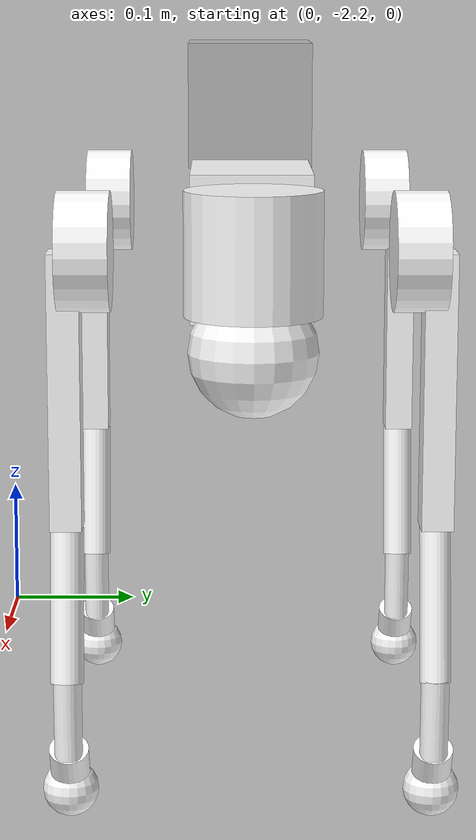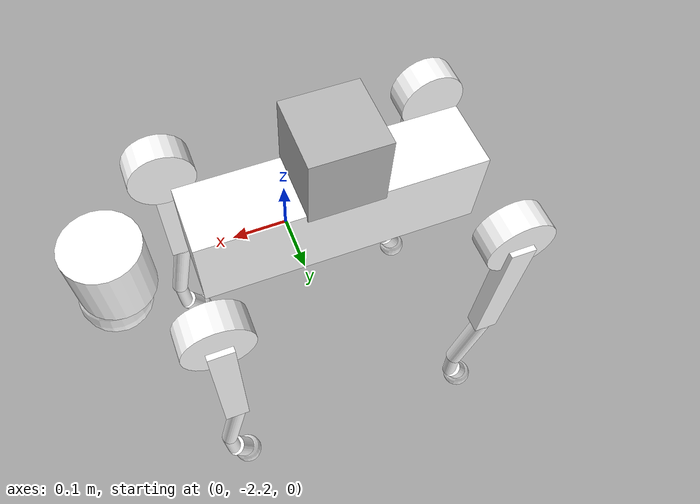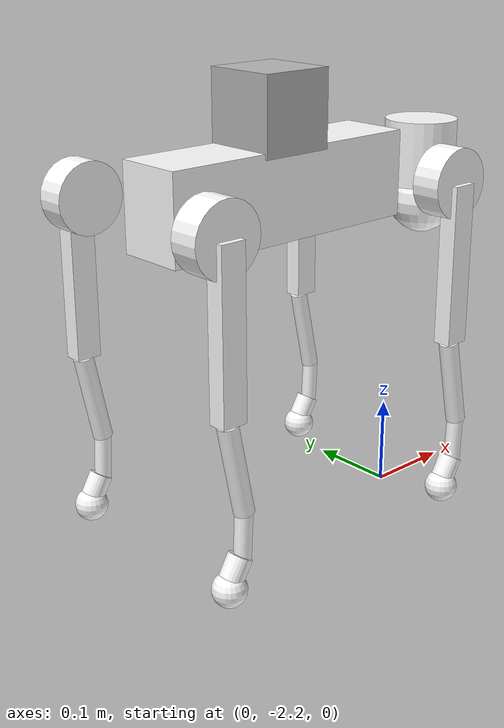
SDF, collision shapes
<?xml version="1.0" ?>
<sdf version="1.10">
  <model name='go2'>
    <plugin
      filename="gz-sim-velocity-control-system"
      name="gz::sim::systems::VelocityControl">
      <initial_linear>0 0 0</initial_linear>
      <initial_angular>0 0 0</initial_angular>
    </plugin>
    <pose>0 -2 0.325 0 -0 0</pose>
      <link name='base'>
        <inertial>
          <pose>0.02015306388240143 -1.613934527087907e-20 -0.005108955351009753 0 0 0</pose>
          <mass>7.2790000000000017</mass>
          <inertia>
            <ixx>0.025737618948512481</ixx>
            <ixy>0.00012166</ixy>
            <ixz>0.001534235398809762</ixz>
            <iyy>0.1031209538931058</iyy>
            <iyz>-3.1199999999999999e-05</iyz>
            <izz>0.1128090234445933</izz>
          </inertia>
        </inertial>
        <collision name='base_collision'>
          <pose>0 0 0 0 0 0</pose>
          <geometry>
            <box>
              <size>0.3762 0.0935 0.114</size>
            </box>
          </geometry>
        </collision>
        <collision name='base_fixed_joint_lump__Head_upper_collision_1'>
          <pose>0.285 0 0.01 0 0 0</pose>
          <geometry>
            <cylinder>
              <length>0.089999999999999997</length>
              <radius>0.050000000000000003</radius>
            </cylinder>
          </geometry>
        </collision>
        <collision name='base_fixed_joint_lump__Head_lower_collision_2'>
          <pose>0.293 0 -0.06 0 0 0</pose>
          <geometry>
            <sphere>
              <radius>0.047</radius>
            </sphere>
          </geometry>
        </collision>
        <visual name='base_visual'>
          <pose>0 0 0 0 0 0</pose>
          <geometry>
            <mesh>
              <scale>1 1 1</scale>
              <uri>../dae/base.dae</uri>
            </mesh>
          </geometry>
          <material>
            <diffuse>1 1 1 1</diffuse>
            <ambient>1 1 1 1</ambient>
          </material>
        </visual>
      </link>
      <joint name='FL_hip_joint' type='fixed'>
        <pose relative_to='base'>0.1934 0.0465 0 0 0 0</pose>
        <parent>base</parent>
        <child>FL_hip</child>
        <axis>
          <xyz>1 0 0</xyz>
          <limit>
            <lower>-1.0471999999999999</lower>
            <upper>1.0471999999999999</upper>
            <effort>23.699999999999999</effort>
            <velocity>30.100000000000001</velocity>
          </limit>
          <dynamics>
            <spring_reference>0</spring_reference>
            <spring_stiffness>0</spring_stiffness>
          </dynamics>
        </axis>
      </joint>
      <link name='FL_hip'>
        <pose relative_to='FL_hip_joint'>0 0 0 0 0 0</pose>
        <inertial>
          <pose>-0.004773402868318123 0.00169748370273794 -9.281616688396352e-05 0 0 0</pose>
          <mass>0.76700000000000002</mass>
          <inertia>
            <ixx>0.00053999151781062584</ixx>
            <ixy>-2.1220993324641449e-06</ixy>
            <ixz>1.0653925501955671e-06</ixz>
            <iyy>0.00099813696478559337</iyy>
            <iyz>-1.4027352647979141e-06</iyz>
            <izz>0.00065828474786205991</izz>
          </inertia>
        </inertial>
        <collision name='FL_hip_collision'>
          <pose>0 0.08 0 1.570796326794896 0 0</pose>
          <geometry>
            <cylinder>
              <length>0.040000000000000001</length>
              <radius>0.045999999999999999</radius>
            </cylinder>
          </geometry>
        </collision>
        <visual name='FL_hip_visual'>
          <pose>0 0 0 0 0 0</pose>
          <geometry>
            <mesh>
              <scale>1 1 1</scale>
              <uri>../dae/hip.dae</uri>
            </mesh>
          </geometry>
          <material>
            <diffuse>1 1 1 1</diffuse>
            <ambient>1 1 1 1</ambient>
          </material>
        </visual>
      </link>
      <joint name='FL_thigh_joint' type='fixed'>
        <pose relative_to='FL_hip'>0 0.0955 0 0 0 0</pose>
        <parent>FL_hip</parent>
        <child>FL_thigh</child>
        <axis>
          <xyz>0 1 0</xyz>
          <limit>
            <lower>-1.5708</lower>
            <upper>3.4906999999999999</upper>
            <effort>23.699999999999999</effort>
            <velocity>30.100000000000001</velocity>
          </limit>
          <dynamics>
            <spring_reference>0</spring_reference>
            <spring_stiffness>0</spring_stiffness>
          </dynamics>
        </axis>
      </joint>
      <link name='FL_thigh'>
        <pose relative_to='FL_thigh_joint'>0 0 0 0 0 0</pose>
        <inertial>
          <pose>-0.003471780821917808 -0.02302074939564867 -0.03035487510072523 0 0 0</pose>
          <mass>1.2410000000000001</mass>
          <inertia>
            <ixx>0.0059963333412087023</ixx>
            <ixy>9.0305334356164388e-05</ixy>
            <ixz>-0.00029910392372602742</ixz>
            <iyy>0.0060013394099700237</iyy>
            <iyz>0.00083515091803384371</iyz>
            <izz>0.001099147165167445</izz>
          </inertia>
        </inertial>
        <collision name='FL_thigh_collision'>
          <pose>0 0 -0.1065 0 1.570796326794897 0</pose>
          <geometry>
            <box>
              <size>0.213 0.0245 0.034</size>
            </box>
          </geometry>
        </collision>
        <visual name='FL_thigh_visual'>
          <pose>0 0 0 0 0 0</pose>
          <geometry>
            <mesh>
              <scale>1 1 1</scale>
              <uri>../dae/thigh.dae</uri>
            </mesh>
          </geometry>
          <material>
            <diffuse>1 1 1 1</diffuse>
            <ambient>1 1 1 1</ambient>
          </material>
        </visual>
      </link>
      <joint name='FL_calf_joint' type='fixed'>
        <pose relative_to='FL_thigh'>0 0 -0.213 0 0 0</pose>
        <parent>FL_thigh</parent>
        <child>FL_calf</child>
        <axis>
          <xyz>0 1 0</xyz>
          <limit>
            <lower>-2.7227000000000001</lower>
            <upper>-0.83775999999999995</upper>
            <effort>45.43</effort>
            <velocity>15.699999999999999</velocity>
          </limit>
          <dynamics>
            <spring_reference>0</spring_reference>
            <spring_stiffness>0</spring_stiffness>
          </dynamics>
        </axis>
      </joint>
      <link name='FL_calf'>
        <pose relative_to='FL_calf_joint'>0 0 0 0 0 0</pose>
        <inertial>
          <pose>0.004350103092783504 -0.0007739690721649483 -0.1352061855670103 0 0 0</pose>
          <mass>0.19400000000000001</mass>
          <inertia>
            <ixx>0.001394581937371134</ixx>
            <ixy>5.0965402061855686e-07</ixy>
            <ixz>1.475958762886847e-07</ixz>
            <iyy>0.001415505295175258</iyy>
            <iyz>1.1313958762886591e-05</iyz>
            <izz>4.3483727391752568e-05</izz>
          </inertia>
        </inertial>
        <collision name='FL_calf_collision'>
          <pose>0.008 0 -0.06 0 -0.21 0</pose>
          <geometry>
            <cylinder>
              <length>0.12</length>
              <radius>0.012</radius>
            </cylinder>
          </geometry>
        </collision>
        <collision name='FL_calflower_collision_1'>
          <pose>0.02 0 -0.148 0 0.05 0</pose>
          <geometry>
            <cylinder>
              <length>0.065000000000000002</length>
              <radius>0.010999999999999999</radius>
            </cylinder>
          </geometry>
        </collision>
        <collision name='FL_calflower1_collision_2'>
          <pose>0.008013330625223204 0 -0.1874502187230919 0 0.53 0</pose>
          <geometry>
            <cylinder>
              <length>0.029999999999999999</length>
              <radius>0.0155</radius>
            </cylinder>
          </geometry>
        </collision>
        <collision name='FL_calf_fixed_joint_lump__FL_foot_collision_3'>
          <pose>-0.002 0 -0.213 0 0 0</pose>
          <geometry>
            <sphere>
              <radius>0.021999999999999999</radius>
            </sphere>
          </geometry>
        </collision>
        <visual name='FL_calf_visual'>
          <pose>0 0 0 0 0 0</pose>
          <geometry>
            <mesh>
              <scale>1 1 1</scale>
              <uri>../dae/calf.dae</uri>
            </mesh>
          </geometry>
          <material>
            <diffuse>1 1 1 1</diffuse>
            <ambient>1 1 1 1</ambient>
          </material>
        </visual>
        <visual name='FL_calf_fixed_joint_lump__FL_foot_visual_1'>
          <pose>0 0 -0.213 0 0 0</pose>
          <geometry>
            <mesh>
              <scale>1 1 1</scale>
              <uri>../dae/foot.dae</uri>
            </mesh>
          </geometry>
          <material>
            <diffuse>1 1 1 1</diffuse>
            <ambient>1 1 1 1</ambient>
          </material>
        </visual>
      </link>
      <joint name='FR_hip_joint' type='fixed'>
        <pose relative_to='base'>0.1934 -0.0465 0 0 0 0</pose>
        <parent>base</parent>
        <child>FR_hip</child>
        <axis>
          <xyz>1 0 0</xyz>
          <limit>
            <lower>-1.0471999999999999</lower>
            <upper>1.0471999999999999</upper>
            <effort>23.699999999999999</effort>
            <velocity>30.100000000000001</velocity>
          </limit>
          <dynamics>
            <spring_reference>0</spring_reference>
            <spring_stiffness>0</spring_stiffness>
          </dynamics>
        </axis>
      </joint>
      <link name='FR_hip'>
        <pose relative_to='FR_hip_joint'>0 0 0 0 0 0</pose>
        <inertial>
          <pose>-0.004773402868318123 -0.00169748370273794 -9.281616688396352e-05 0 0 0</pose>
          <mass>0.76700000000000002</mass>
          <inertia>
            <ixx>0.00053999151781062584</ixx>
            <ixy>2.1220993324641449e-06</ixy>
            <ixz>1.0653925501955671e-06</ixz>
            <iyy>0.00099813696478559337</iyy>
            <iyz>1.4027352647979141e-06</iyz>
            <izz>0.00065828474786205991</izz>
          </inertia>
        </inertial>
        <collision name='FR_hip_collision'>
          <pose>0 -0.08 0 1.570796326794896 0 0</pose>
          <geometry>
            <cylinder>
              <length>0.040000000000000001</length>
              <radius>0.045999999999999999</radius>
            </cylinder>
          </geometry>
        </collision>
        <visual name='FR_hip_visual'>
          <pose>0 0 0 3.1415 0 0</pose>
          <geometry>
            <mesh>
              <scale>1 1 1</scale>
              <uri>../dae/hip.dae</uri>
            </mesh>
          </geometry>
          <material>
            <diffuse>1 1 1 1</diffuse>
            <ambient>1 1 1 1</ambient>
          </material>
        </visual>
      </link>
      <joint name='FR_thigh_joint' type='fixed'>
        <pose relative_to='FR_hip'>0 -0.0955 0 0 0 0</pose>
        <parent>FR_hip</parent>
        <child>FR_thigh</child>
        <axis>
          <xyz>0 1 0</xyz>
          <limit>
            <lower>-1.5708</lower>
            <upper>3.4906999999999999</upper>
            <effort>23.699999999999999</effort>
            <velocity>30.100000000000001</velocity>
          </limit>
          <dynamics>
            <spring_reference>0</spring_reference>
            <spring_stiffness>0</spring_stiffness>
          </dynamics>
        </axis>
      </joint>
      <link name='FR_thigh'>
        <pose relative_to='FR_thigh_joint'>0 0 0 0 0 0</pose>
        <inertial>
          <pose>-0.003471780821917808 0.02302074939564867 -0.03035487510072523 0 0 0</pose>
          <mass>1.2410000000000001</mass>
          <inertia>
            <ixx>0.0059963333412087023</ixx>
            <ixy>-9.0305334356164388e-05</ixy>
            <ixz>-0.00029910392372602742</ixz>
            <iyy>0.0060013394099700237</iyy>
            <iyz>-0.00083515091803384371</iyz>
            <izz>0.001099147165167445</izz>
          </inertia>
        </inertial>
        <collision name='FR_thigh_collision'>
          <pose>0 0 -0.1065 0 1.570796326794897 0</pose>
          <geometry>
            <box>
              <size>0.213 0.0245 0.034</size>
            </box>
          </geometry>
        </collision>
        <visual name='FR_thigh_visual'>
          <pose>0 0 0 0 0 0</pose>
          <geometry>
            <mesh>
              <scale>1 1 1</scale>
              <uri>../dae/thigh_mirror.dae</uri>
            </mesh>
          </geometry>
          <material>
            <diffuse>1 1 1 1</diffuse>
            <ambient>1 1 1 1</ambient>
          </material>
        </visual>
      </link>
      <joint name='FR_calf_joint' type='fixed'>
        <pose relative_to='FR_thigh'>0 0 -0.213 0 0 0</pose>
        <parent>FR_thigh</parent>
        <child>FR_calf</child>
        <axis>
          <xyz>0 1 0</xyz>
          <limit>
            <lower>-2.7227000000000001</lower>
            <upper>-0.83775999999999995</upper>
            <effort>45.43</effort>
            <velocity>15.699999999999999</velocity>
          </limit>
          <dynamics>
            <spring_reference>0</spring_reference>
            <spring_stiffness>0</spring_stiffness>
          </dynamics>
        </axis>
      </joint>
      <link name='FR_calf'>
        <pose relative_to='FR_calf_joint'>0 0 0 0 0 0</pose>
        <inertial>
          <pose>0.004350103092783504 0.0007739690721649483 -0.1352061855670103 0 0 0</pose>
          <mass>0.19400000000000001</mass>
          <inertia>
            <ixx>0.001394581937371134</ixx>
            <ixy>-5.0965402061855686e-07</ixy>
            <ixz>1.475958762886847e-07</ixz>
            <iyy>0.001415505295175258</iyy>
            <iyz>-1.1313958762886591e-05</iyz>
            <izz>4.3483727391752568e-05</izz>
          </inertia>
        </inertial>
        <collision name='FR_calf_collision'>
          <pose>0.01 0 -0.06 0 -0.2 0</pose>
          <geometry>
            <cylinder>
              <length>0.12</length>
              <radius>0.012999999999999999</radius>
            </cylinder>
          </geometry>
        </collision>
        <collision name='FR_calflower_collision_1'>
          <pose>0.02 0 -0.148 0 0.05 0</pose>
          <geometry>
            <cylinder>
              <length>0.065000000000000002</length>
              <radius>0.010999999999999999</radius>
            </cylinder>
          </geometry>
        </collision>
        <collision name='FR_calflower1_collision_2'>
          <pose>0.008013330625223204 0 -0.1874502187230919 0 0.53 0</pose>
          <geometry>
            <cylinder>
              <length>0.029999999999999999</length>
              <radius>0.0155</radius>
            </cylinder>
          </geometry>
        </collision>
        <collision name='FR_calf_fixed_joint_lump__FR_foot_collision_3'>
          <pose>-0.002 0 -0.213 0 0 0</pose>
          <geometry>
            <sphere>
              <radius>0.021999999999999999</radius>
            </sphere>
          </geometry>
        </collision>
        <visual name='FR_calf_visual'>
          <pose>0 0 0 0 0 0</pose>
          <geometry>
            <mesh>
              <scale>1 1 1</scale>
              <uri>../dae/calf_mirror.dae</uri>
            </mesh>
          </geometry>
          <material>
            <diffuse>1 1 1 1</diffuse>
            <ambient>1 1 1 1</ambient>
          </material>
        </visual>
        <visual name='FR_calf_fixed_joint_lump__FR_foot_visual_1'>
          <pose>0 0 -0.213 0 0 0</pose>
          <geometry>
            <mesh>
              <scale>1 1 1</scale>
              <uri>../dae/foot.dae</uri>
            </mesh>
          </geometry>
          <material>
            <diffuse>1 1 1 1</diffuse>
            <ambient>1 1 1 1</ambient>
          </material>
        </visual>
      </link>
      <joint name='RL_hip_joint' type='fixed'>
        <pose relative_to='base'>-0.1934 0.0465 0 0 0 0</pose>
        <parent>base</parent>
        <child>RL_hip</child>
        <axis>
          <xyz>1 0 0</xyz>
          <limit>
            <lower>-1.0471999999999999</lower>
            <upper>1.0471999999999999</upper>
            <effort>23.699999999999999</effort>
            <velocity>30.100000000000001</velocity>
          </limit>
          <dynamics>
            <spring_reference>0</spring_reference>
            <spring_stiffness>0</spring_stiffness>
          </dynamics>
        </axis>
      </joint>
      <link name='RL_hip'>
        <pose relative_to='RL_hip_joint'>0 0 0 0 0 0</pose>
        <inertial>
          <pose>0.004773402868318123 0.00169748370273794 -9.281616688396352e-05 0 0 0</pose>
          <mass>0.76700000000000002</mass>
          <inertia>
            <ixx>0.00053999151781062584</ixx>
            <ixy>2.1220993324641449e-06</ixy>
            <ixz>-1.0653925501955671e-06</ixz>
            <iyy>0.00099813696478559337</iyy>
            <iyz>-1.4027352647979141e-06</iyz>
            <izz>0.00065828474786205991</izz>
          </inertia>
        </inertial>
        <collision name='RL_hip_collision'>
          <pose>0 0.08 0 1.570796326794896 0 0</pose>
          <geometry>
            <cylinder>
              <length>0.040000000000000001</length>
              <radius>0.045999999999999999</radius>
            </cylinder>
          </geometry>
        </collision>
        <visual name='RL_hip_visual'>
          <pose>0 0 0 3.141592653589793 9.265358979305727e-05 3.141592653589793</pose>
          <geometry>
            <mesh>
              <scale>1 1 1</scale>
              <uri>../dae/hip.dae</uri>
            </mesh>
          </geometry>
          <material>
            <diffuse>1 1 1 1</diffuse>
            <ambient>1 1 1 1</ambient>
          </material>
        </visual>
      </link>
      <joint name='RL_thigh_joint' type='fixed'>
        <pose relative_to='RL_hip'>0 0.0955 0 0 0 0</pose>
        <parent>RL_hip</parent>
        <child>RL_thigh</child>
        <axis>
          <xyz>0 1 0</xyz>
          <limit>
            <lower>-0.52359999999999995</lower>
            <upper>4.5378999999999996</upper>
            <effort>23.699999999999999</effort>
            <velocity>30.100000000000001</velocity>
          </limit>
          <dynamics>
            <spring_reference>0</spring_reference>
            <spring_stiffness>0</spring_stiffness>
          </dynamics>
        </axis>
      </joint>
      <link name='RL_thigh'>
        <pose relative_to='RL_thigh_joint'>0 0 0 0 0 0</pose>
        <inertial>
          <pose>-0.003471780821917808 -0.02302074939564867 -0.03035487510072523 0 0 0</pose>
          <mass>1.2410000000000001</mass>
          <inertia>
            <ixx>0.0059963333412087023</ixx>
            <ixy>9.0305334356164388e-05</ixy>
            <ixz>-0.00029910392372602742</ixz>
            <iyy>0.0060013394099700237</iyy>
            <iyz>0.00083515091803384371</iyz>
            <izz>0.001099147165167445</izz>
          </inertia>
        </inertial>
        <collision name='RL_thigh_collision'>
          <pose>0 0 -0.1065 0 1.570796326794897 0</pose>
          <geometry>
            <box>
              <size>0.213 0.0245 0.034</size>
            </box>
          </geometry>
        </collision>
        <visual name='RL_thigh_visual'>
          <pose>0 0 0 0 0 0</pose>
          <geometry>
            <mesh>
              <scale>1 1 1</scale>
              <uri>../dae/thigh.dae</uri>
            </mesh>
          </geometry>
          <material>
            <diffuse>1 1 1 1</diffuse>
            <ambient>1 1 1 1</ambient>
          </material>
        </visual>
      </link>
      <joint name='RL_calf_joint' type='fixed'>
        <pose relative_to='RL_thigh'>0 0 -0.213 0 0 0</pose>
        <parent>RL_thigh</parent>
        <child>RL_calf</child>
        <axis>
          <xyz>0 1 0</xyz>
          <limit>
            <lower>-2.7227000000000001</lower>
            <upper>-0.83775999999999995</upper>
            <effort>45.43</effort>
            <velocity>15.699999999999999</velocity>
          </limit>
          <dynamics>
            <spring_reference>0</spring_reference>
            <spring_stiffness>0</spring_stiffness>
          </dynamics>
        </axis>
      </joint>
      <link name='RL_calf'>
        <pose relative_to='RL_calf_joint'>0 0 0 0 0 0</pose>
        <inertial>
          <pose>0.004350103092783504 -0.0007739690721649483 -0.1352061855670103 0 0 0</pose>
          <mass>0.19400000000000001</mass>
          <inertia>
            <ixx>0.001394581937371134</ixx>
            <ixy>5.0965402061855686e-07</ixy>
            <ixz>1.475958762886847e-07</ixz>
            <iyy>0.001415505295175258</iyy>
            <iyz>1.1313958762886591e-05</iyz>
            <izz>4.3483727391752568e-05</izz>
          </inertia>
        </inertial>
        <collision name='RL_calf_collision'>
          <pose>0.01 0 -0.06 0 -0.2 0</pose>
          <geometry>
            <cylinder>
              <length>0.12</length>
              <radius>0.012999999999999999</radius>
            </cylinder>
          </geometry>
        </collision>
        <collision name='RL_calflower_collision_1'>
          <pose>0.02 0 -0.148 0 0.05 0</pose>
          <geometry>
            <cylinder>
              <length>0.065000000000000002</length>
              <radius>0.010999999999999999</radius>
            </cylinder>
          </geometry>
        </collision>
        <collision name='RL_calflower1_collision_2'>
          <pose>0.008013330625223204 0 -0.1874502187230919 0 0.53 0</pose>
          <geometry>
            <cylinder>
              <length>0.029999999999999999</length>
              <radius>0.0155</radius>
            </cylinder>
          </geometry>
        </collision>
        <collision name='RL_calf_fixed_joint_lump__RL_foot_collision_3'>
          <pose>-0.002 0 -0.213 0 0 0</pose>
          <geometry>
            <sphere>
              <radius>0.021999999999999999</radius>
            </sphere>
          </geometry>
        </collision>
        <visual name='RL_calf_visual'>
          <pose>0 0 0 0 0 0</pose>
          <geometry>
            <mesh>
              <scale>1 1 1</scale>
              <uri>../dae/calf.dae</uri>
            </mesh>
          </geometry>
          <material>
            <diffuse>1 1 1 1</diffuse>
            <ambient>1 1 1 1</ambient>
          </material>
        </visual>
        <visual name='RL_calf_fixed_joint_lump__RL_foot_visual_1'>
          <pose>0 0 -0.213 0 0 0</pose>
          <geometry>
            <mesh>
              <scale>1 1 1</scale>
              <uri>../dae/foot.dae</uri>
            </mesh>
          </geometry>
          <material>
            <diffuse>1 1 1 1</diffuse>
            <ambient>1 1 1 1</ambient>
          </material>
        </visual>
      </link>
      <joint name='RR_hip_joint' type='fixed'>
        <pose relative_to='base'>-0.1934 -0.0465 0 0 0 0</pose>
        <parent>base</parent>
        <child>RR_hip</child>
        <axis>
          <xyz>1 0 0</xyz>
          <limit>
            <lower>-1.0471999999999999</lower>
            <upper>1.0471999999999999</upper>
            <effort>23.699999999999999</effort>
            <velocity>30.100000000000001</velocity>
          </limit>
          <dynamics>
            <spring_reference>0</spring_reference>
            <spring_stiffness>0</spring_stiffness>
          </dynamics>
        </axis>
      </joint>
      <link name='RR_hip'>
        <pose relative_to='RR_hip_joint'>0 0 0 0 0 0</pose>
        <inertial>
          <pose>0.004773402868318123 -0.00169748370273794 -9.281616688396352e-05 0 0 0</pose>
          <mass>0.76700000000000002</mass>
          <inertia>
            <ixx>0.00053999151781062584</ixx>
            <ixy>-2.1220993324641449e-06</ixy>
            <ixz>-1.0653925501955671e-06</ixz>
            <iyy>0.00099813696478559337</iyy>
            <iyz>1.4027352647979141e-06</iyz>
            <izz>0.00065828474786205991</izz>
          </inertia>
        </inertial>
        <collision name='RR_hip_collision'>
          <pose>0 -0.08 0 1.570796326794896 0 0</pose>
          <geometry>
            <cylinder>
              <length>0.040000000000000001</length>
              <radius>0.045999999999999999</radius>
            </cylinder>
          </geometry>
        </collision>
        <visual name='RR_hip_visual'>
          <pose>0 0 0 -9.265358979305726e-05 9.265358979305727e-05 3.141592653589793</pose>
          <geometry>
            <mesh>
              <scale>1 1 1</scale>
              <uri>../dae/hip.dae</uri>
            </mesh>
          </geometry>
          <material>
            <diffuse>1 1 1 1</diffuse>
            <ambient>1 1 1 1</ambient>
          </material>
        </visual>
      </link>
      <joint name='RR_thigh_joint' type='fixed'>
        <pose relative_to='RR_hip'>0 -0.0955 0 0 0 0</pose>
        <parent>RR_hip</parent>
        <child>RR_thigh</child>
        <axis>
          <xyz>0 1 0</xyz>
          <limit>
            <lower>-0.52359999999999995</lower>
            <upper>4.5378999999999996</upper>
            <effort>23.699999999999999</effort>
            <velocity>30.100000000000001</velocity>
          </limit>
          <dynamics>
            <spring_reference>0</spring_reference>
            <spring_stiffness>0</spring_stiffness>
          </dynamics>
        </axis>
      </joint>
      <link name='RR_thigh'>
        <pose relative_to='RR_thigh_joint'>0 0 0 0 0 0</pose>
        <inertial>
          <pose>-0.003471780821917808 0.02302074939564867 -0.03035487510072523 0 0 0</pose>
          <mass>1.2410000000000001</mass>
          <inertia>
            <ixx>0.0059963333412087023</ixx>
            <ixy>-9.0305334356164388e-05</ixy>
            <ixz>-0.00029910392372602742</ixz>
            <iyy>0.0060013394099700237</iyy>
            <iyz>-0.00083515091803384371</iyz>
            <izz>0.001099147165167445</izz>
          </inertia>
        </inertial>
        <collision name='RR_thigh_collision'>
          <pose>0 0 -0.1065 0 1.570796326794897 0</pose>
          <geometry>
            <box>
              <size>0.213 0.0245 0.034</size>
            </box>
          </geometry>
        </collision>
        <visual name='RR_thigh_visual'>
          <pose>0 0 0 0 0 0</pose>
          <geometry>
            <mesh>
              <scale>1 1 1</scale>
              <uri>../dae/thigh_mirror.dae</uri>
            </mesh>
          </geometry>
          <material>
            <diffuse>1 1 1 1</diffuse>
            <ambient>1 1 1 1</ambient>
          </material>
        </visual>
      </link>
      <joint name='RR_calf_joint' type='fixed'>
        <pose relative_to='RR_thigh'>0 0 -0.213 0 0 0</pose>
        <parent>RR_thigh</parent>
        <child>RR_calf</child>
        <axis>
          <xyz>0 1 0</xyz>
          <limit>
            <lower>-2.7227000000000001</lower>
            <upper>-0.83775999999999995</upper>
            <effort>45.43</effort>
            <velocity>15.699999999999999</velocity>
          </limit>
          <dynamics>
            <spring_reference>0</spring_reference>
            <spring_stiffness>0</spring_stiffness>
          </dynamics>
        </axis>
      </joint>
      <link name='RR_calf'>
        <pose relative_to='RR_calf_joint'>0 0 0 0 0 0</pose>
        <inertial>
          <pose>0.004350103092783504 0.0007739690721649483 -0.1352061855670103 0 0 0</pose>
          <mass>0.19400000000000001</mass>
          <inertia>
            <ixx>0.001394581937371134</ixx>
            <ixy>-5.0965402061855686e-07</ixy>
            <ixz>1.475958762886847e-07</ixz>
            <iyy>0.001415505295175258</iyy>
            <iyz>-1.1313958762886591e-05</iyz>
            <izz>4.3483727391752568e-05</izz>
          </inertia>
        </inertial>
        <collision name='RR_calf_collision'>
          <pose>0.01 0 -0.06 0 -0.2 0</pose>
          <geometry>
            <cylinder>
              <length>0.12</length>
              <radius>0.012999999999999999</radius>
            </cylinder>
          </geometry>
        </collision>
        <collision name='RR_calflower_collision_1'>
          <pose>0.02 0 -0.148 0 0.05 0</pose>
          <geometry>
            <cylinder>
              <length>0.065000000000000002</length>
              <radius>0.010999999999999999</radius>
            </cylinder>
          </geometry>
        </collision>
        <collision name='RR_calflower1_collision_2'>
          <pose>0.008013330625223204 0 -0.1874502187230919 0 0.53 0</pose>
          <geometry>
            <cylinder>
              <length>0.029999999999999999</length>
              <radius>0.0155</radius>
            </cylinder>
          </geometry>
        </collision>
        <collision name='RR_calf_fixed_joint_lump__RR_foot_collision_3'>
          <pose>-0.002 0 -0.213 0 0 0</pose>
          <geometry>
            <sphere>
              <radius>0.021999999999999999</radius>
            </sphere>
          </geometry>
        </collision>
        <visual name='RR_calf_visual'>
          <pose>0 0 0 0 0 0</pose>
          <geometry>
            <mesh>
              <scale>1 1 1</scale>
              <uri>../dae/calf_mirror.dae</uri>
            </mesh>
          </geometry>
          <material>
            <diffuse>1 1 1 1</diffuse>
            <ambient>1 1 1 1</ambient>
          </material>
        </visual>
        <visual name='RR_calf_fixed_joint_lump__RR_foot_visual_1'>
          <pose>0 0 -0.213 0 0 0</pose>
          <geometry>
            <mesh>
              <scale>1 1 1</scale>
              <uri>../dae/foot.dae</uri>
            </mesh>
          </geometry>
          <material>
            <diffuse>1 1 1 1</diffuse>
            <ambient>1 1 1 1</ambient>
          </material>
        </visual>
      </link>
      <frame name='FL_hip_rotor_joint' attached_to='base'>
        <pose>0.11215 0.04675 0 0 -0 0</pose>
      </frame>
      <frame name='FL_hip_rotor' attached_to='FL_hip_rotor_joint'/>
      <frame name='FR_hip_rotor_joint' attached_to='base'>
        <pose>0.11215 -0.04675 0 0 -0 0</pose>
      </frame>
      <frame name='FR_hip_rotor' attached_to='FR_hip_rotor_joint'/>
      <frame name='Head_lower_joint' attached_to='Head_upper'>
        <pose>0.008 0 -0.07 0 -0 0</pose>
      </frame>
      <frame name='Head_lower' attached_to='Head_lower_joint'/>
      <frame name='Head_upper_joint' attached_to='base'>
        <pose>0.285 0 0.01 0 -0 0</pose>
      </frame>
      <frame name='Head_upper' attached_to='Head_upper_joint'/>
      <frame name='RL_hip_rotor_joint' attached_to='base'>
        <pose>-0.11215 0.04675 0 0 -0 0</pose>
      </frame>
      <frame name='RL_hip_rotor' attached_to='RL_hip_rotor_joint'/>
      <frame name='RR_hip_rotor_joint' attached_to='base'>
        <pose>-0.11215 -0.04675 0 0 -0 0</pose>
      </frame>
      <frame name='RR_hip_rotor' attached_to='RR_hip_rotor_joint'/>
      <frame name='imu_joint' attached_to='base'>
        <pose>-0.02557 0 0.04232 0 -0 0</pose>
      </frame>
      <frame name='imu' attached_to='imu_joint'/>
      <frame name='radar_joint' attached_to='base'>
        <pose>0.28945 0 -0.046825 3.14159 0.263393 3.14159</pose>
      </frame>
      <frame name='radar' attached_to='radar_joint'/>
      <frame name='FL_thigh_rotor_joint' attached_to='FL_hip'>
        <pose>0 -0.00015 0 0 -0 0</pose>
      </frame>
      <frame name='FL_thigh_rotor' attached_to='FL_thigh_rotor_joint'/>
      <frame name='FL_calf_rotor_joint' attached_to='FL_thigh'>
        <pose>0 -0.03235 0 0 -0 0</pose>
      </frame>
      <frame name='FL_calf_rotor' attached_to='FL_calf_rotor_joint'/>
      <frame name='FL_calflower1_joint' attached_to='FL_calflower'>
        <pose>-0.01 0 -0.04 0 0.48 0</pose>
      </frame>
      <frame name='FL_calflower1' attached_to='FL_calflower1_joint'/>
      <frame name='FL_calflower_joint' attached_to='FL_calf'>
        <pose>0.02 0 -0.148 0 0.05 0</pose>
      </frame>
      <frame name='FL_calflower' attached_to='FL_calflower_joint'/>
      <frame name='FL_foot_joint' attached_to='FL_calf'>
        <pose>0 0 -0.213 0 -0 0</pose>
      </frame>
      <frame name='FL_foot' attached_to='FL_foot_joint'/>
      <frame name='FR_thigh_rotor_joint' attached_to='FR_hip'>
        <pose>0 0.00015 0 0 -0 0</pose>
      </frame>
      <frame name='FR_thigh_rotor' attached_to='FR_thigh_rotor_joint'/>
      <frame name='FR_calf_rotor_joint' attached_to='FR_thigh'>
        <pose>0 0.03235 0 0 -0 0</pose>
      </frame>
      <frame name='FR_calf_rotor' attached_to='FR_calf_rotor_joint'/>
      <frame name='FR_calflower1_joint' attached_to='FR_calflower'>
        <pose>-0.01 0 -0.04 0 0.48 0</pose>
      </frame>
      <frame name='FR_calflower1' attached_to='FR_calflower1_joint'/>
      <frame name='FR_calflower_joint' attached_to='FR_calf'>
        <pose>0.02 0 -0.148 0 0.05 0</pose>
      </frame>
      <frame name='FR_calflower' attached_to='FR_calflower_joint'/>
      <frame name='FR_foot_joint' attached_to='FR_calf'>
        <pose>0 0 -0.213 0 -0 0</pose>
      </frame>
      <frame name='FR_foot' attached_to='FR_foot_joint'/>
      <frame name='RL_thigh_rotor_joint' attached_to='RL_hip'>
        <pose>0 -0.00015 0 0 -0 0</pose>
      </frame>
      <frame name='RL_thigh_rotor' attached_to='RL_thigh_rotor_joint'/>
      <frame name='RL_calf_rotor_joint' attached_to='RL_thigh'>
        <pose>0 -0.03235 0 0 -0 0</pose>
      </frame>
      <frame name='RL_calf_rotor' attached_to='RL_calf_rotor_joint'/>
      <frame name='RL_calflower1_joint' attached_to='RL_calflower'>
        <pose>-0.01 0 -0.04 0 0.48 0</pose>
      </frame>
      <frame name='RL_calflower1' attached_to='RL_calflower1_joint'/>
      <frame name='RL_calflower_joint' attached_to='RL_calf'>
        <pose>0.02 0 -0.148 0 0.05 0</pose>
      </frame>
      <frame name='RL_calflower' attached_to='RL_calflower_joint'/>
      <frame name='RL_foot_joint' attached_to='RL_calf'>
        <pose>0 0 -0.213 0 -0 0</pose>
      </frame>
      <frame name='RL_foot' attached_to='RL_foot_joint'/>
      <frame name='RR_thigh_rotor_joint' attached_to='RR_hip'>
        <pose>0 0.00015 0 0 -0 0</pose>
      </frame>
      <frame name='RR_thigh_rotor' attached_to='RR_thigh_rotor_joint'/>
      <frame name='RR_calf_rotor_joint' attached_to='RR_thigh'>
        <pose>0 0.03235 0 0 -0 0</pose>
      </frame>
      <frame name='RR_calf_rotor' attached_to='RR_calf_rotor_joint'/>
      <frame name='RR_calflower1_joint' attached_to='RR_calflower'>
        <pose>-0.01 0 -0.04 0 0.48 0</pose>
      </frame>
      <frame name='RR_calflower1' attached_to='RR_calflower1_joint'/>
      <frame name='RR_calflower_joint' attached_to='RR_calf'>
        <pose>0.02 0 -0.148 0 0.05 0</pose>
      </frame>
      <frame name='RR_calflower' attached_to='RR_calflower_joint'/>
      <frame name='RR_foot_joint' attached_to='RR_calf'>
        <pose>0 0 -0.213 0 -0 0</pose>
      </frame>
      <frame name='RR_foot' attached_to='RR_foot_joint'/>

      <link name="camera_link">
        <pose>0 0 0.1 0 0 0</pose>
        <inertial>
          <mass>0.1</mass>
          <inertia>
            <ixx>0.000166667</ixx>
            <iyy>0.000166667</iyy>
            <izz>0.000166667</izz>
          </inertia>
        </inertial>
        <collision name="collision">
          <geometry>
            <box>
              <size>0.1 0.1 0.1</size>
            </box>
          </geometry>
        </collision>
        <visual name="visual">
          <geometry>
            <box>
              <size>0.1 0.1 0.1</size>
            </box>
          </geometry>
        </visual>

        <sensor name="camera" type="camera">
          <pose>0 0 0.1 0 0 0</pose>
          <camera>
            <horizontal_fov>1.047</horizontal_fov>
            <image>
              <width>320</width>
              <height>240</height>
            </image>
            <clip>
              <near>0.1</near>
              <far>100</far>
            </clip>
          </camera>
          <always_on>1</always_on>
          <update_rate>30</update_rate>
          <visualize>true</visualize>
        </sensor>

        <sensor name="lidar" type="gpu_lidar">
          <pose>0 0 0.1 0 0 0</pose>
          <update_rate>10</update_rate>
          <ray>
            <scan>
              <horizontal>
                <samples>1800</samples>
                <resolution>1</resolution>
                <min_angle>-3.14159</min_angle>
                <max_angle>3.14159</max_angle>
              </horizontal>
              <vertical>
                <samples>32</samples>
                <resolution>1</resolution>
                <min_angle>-0.122</min_angle>
                <max_angle>0.2</max_angle>
              </vertical>
            </scan>
            <range>
              <min>0.05</min>
              <max>10.0</max>
              <resolution>0.01</resolution>
            </range>
            <noise>
              <type>gaussian</type>
              <mean>0.0</mean>
              <stddev>0.01</stddev>
            </noise>
          </ray>
          <visualize>true</visualize>
          <always_on>true</always_on>
        </sensor>

      </link>

      <joint name='camera_sensor_joint' type='fixed'>
        <parent>base</parent>
        <child>camera_link</child>
      </joint>

    </model>
</sdf>
